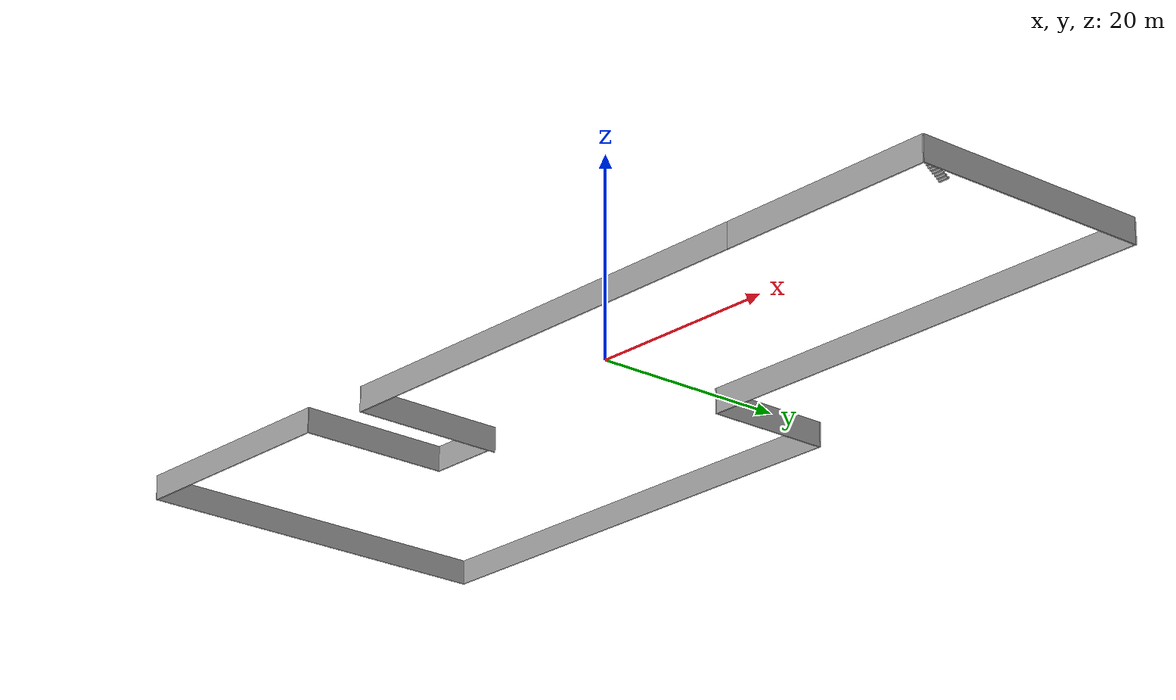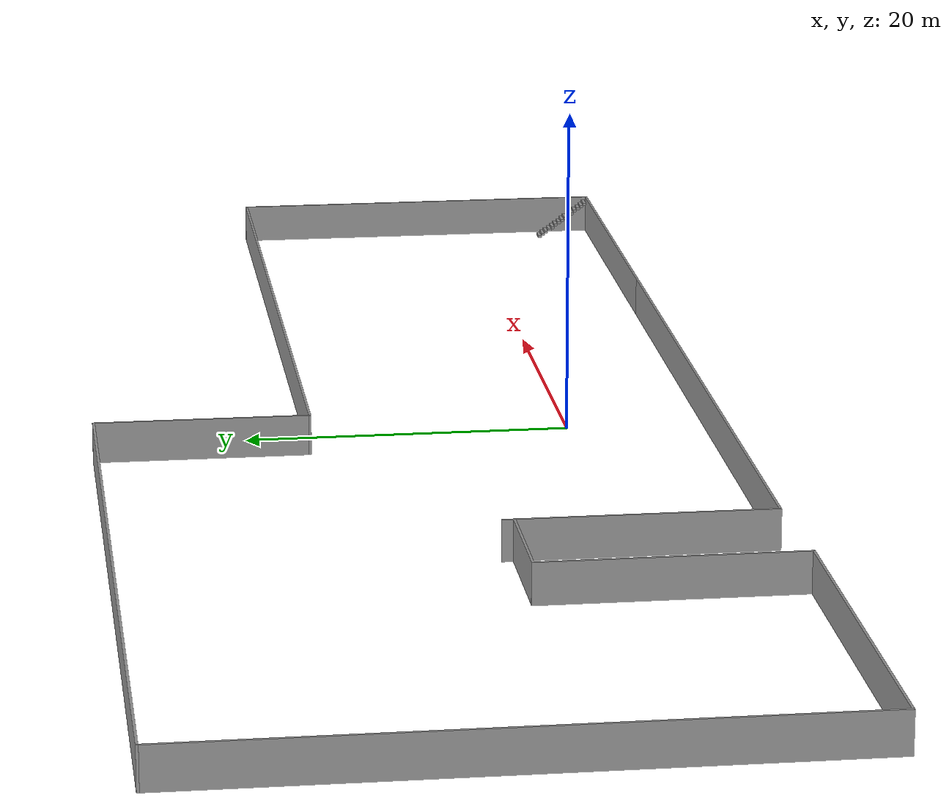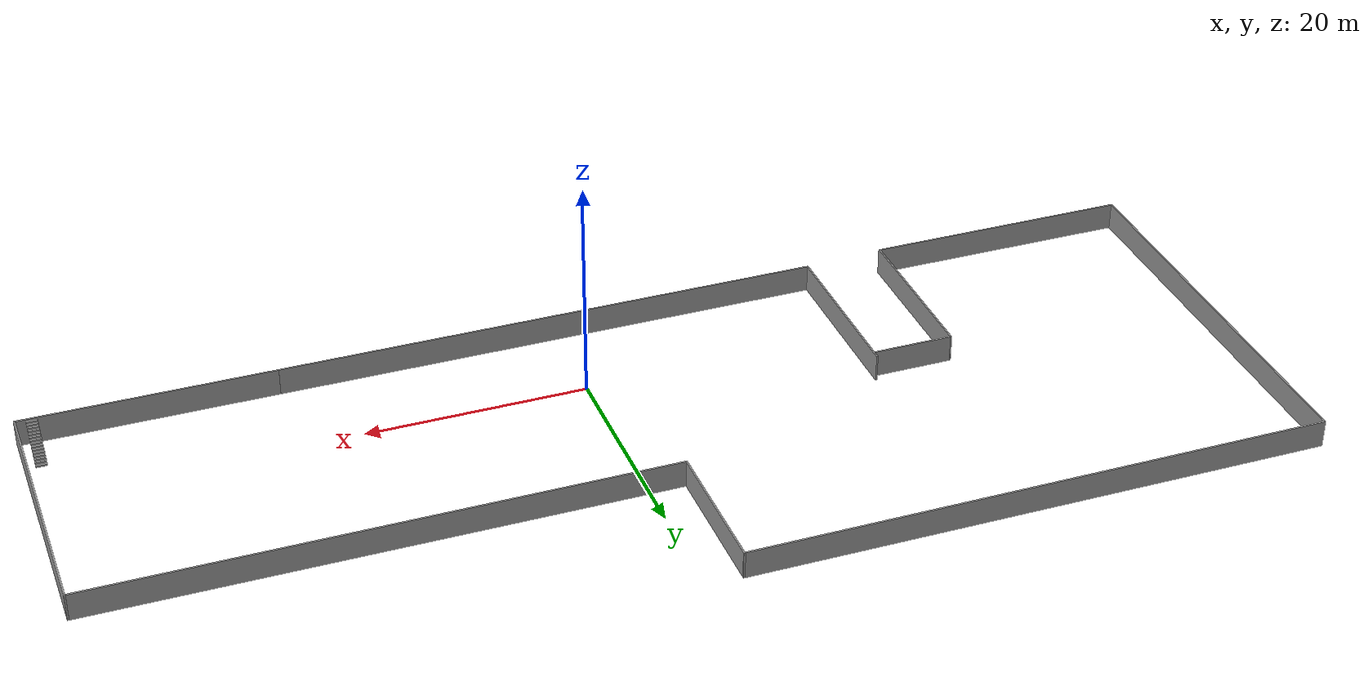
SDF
<?xml version='1.0'?>
<sdf version='1.7'>
  <model name='world.sdf'>
    <pose>-3.86099 10.236 0 0 -0 0</pose>
    <link name='Stairs_1'>
      <visual name='Stairs_1_Visual_0'>
        <pose>50.5695 -15.1205 0.083333 0 -0 0</pose>
        <geometry>
          <box>
            <size>1 0.233333 0.166667</size>
          </box>
        </geometry>
        <material>
          <script>
            <uri>file://media/materials/scripts/gazebo.material</uri>
            <name>Gazebo/Grey</name>
          </script>
          <ambient>1 1 1 1</ambient>
        </material>
        <meta>
          <layer>0</layer>
        </meta>
      </visual>
      <collision name='Stairs_1_Collision_0'>
        <geometry>
          <box>
            <size>1 0.233333 0.166667</size>
          </box>
        </geometry>
        <pose>50.5695 -15.1205 0.083333 0 -0 0</pose>
      </collision>
      <visual name='Stairs_1_Visual_1'>
        <pose>50.5695 -15.3538 0.25 0 -0 0</pose>
        <geometry>
          <box>
            <size>1 0.233333 0.166667</size>
          </box>
        </geometry>
        <material>
          <script>
            <uri>file://media/materials/scripts/gazebo.material</uri>
            <name>Gazebo/Grey</name>
          </script>
          <ambient>1 1 1 1</ambient>
        </material>
        <meta>
          <layer>0</layer>
        </meta>
      </visual>
      <collision name='Stairs_1_Collision_1'>
        <geometry>
          <box>
            <size>1 0.233333 0.166667</size>
          </box>
        </geometry>
        <pose>50.5695 -15.3538 0.25 0 -0 0</pose>
      </collision>
      <visual name='Stairs_1_Visual_2'>
        <pose>50.5695 -15.5871 0.416667 0 -0 0</pose>
        <geometry>
          <box>
            <size>1 0.233333 0.166667</size>
          </box>
        </geometry>
        <material>
          <script>
            <uri>file://media/materials/scripts/gazebo.material</uri>
            <name>Gazebo/Grey</name>
          </script>
          <ambient>1 1 1 1</ambient>
        </material>
        <meta>
          <layer>0</layer>
        </meta>
      </visual>
      <collision name='Stairs_1_Collision_2'>
        <geometry>
          <box>
            <size>1 0.233333 0.166667</size>
          </box>
        </geometry>
        <pose>50.5695 -15.5871 0.416667 0 -0 0</pose>
      </collision>
      <visual name='Stairs_1_Visual_3'>
        <pose>50.5695 -15.8205 0.583333 0 -0 0</pose>
        <geometry>
          <box>
            <size>1 0.233333 0.166667</size>
          </box>
        </geometry>
        <material>
          <script>
            <uri>file://media/materials/scripts/gazebo.material</uri>
            <name>Gazebo/Grey</name>
          </script>
          <ambient>1 1 1 1</ambient>
        </material>
        <meta>
          <layer>0</layer>
        </meta>
      </visual>
      <collision name='Stairs_1_Collision_3'>
        <geometry>
          <box>
            <size>1 0.233333 0.166667</size>
          </box>
        </geometry>
        <pose>50.5695 -15.8205 0.583333 0 -0 0</pose>
      </collision>
      <visual name='Stairs_1_Visual_4'>
        <pose>50.5695 -16.0538 0.75 0 -0 0</pose>
        <geometry>
          <box>
            <size>1 0.233333 0.166667</size>
          </box>
        </geometry>
        <material>
          <script>
            <uri>file://media/materials/scripts/gazebo.material</uri>
            <name>Gazebo/Grey</name>
          </script>
          <ambient>1 1 1 1</ambient>
        </material>
        <meta>
          <layer>0</layer>
        </meta>
      </visual>
      <collision name='Stairs_1_Collision_4'>
        <geometry>
          <box>
            <size>1 0.233333 0.166667</size>
          </box>
        </geometry>
        <pose>50.5695 -16.0538 0.75 0 -0 0</pose>
      </collision>
      <visual name='Stairs_1_Visual_5'>
        <pose>50.5695 -16.2871 0.916667 0 -0 0</pose>
        <geometry>
          <box>
            <size>1 0.233333 0.166667</size>
          </box>
        </geometry>
        <material>
          <script>
            <uri>file://media/materials/scripts/gazebo.material</uri>
            <name>Gazebo/Grey</name>
          </script>
          <ambient>1 1 1 1</ambient>
        </material>
        <meta>
          <layer>0</layer>
        </meta>
      </visual>
      <collision name='Stairs_1_Collision_5'>
        <geometry>
          <box>
            <size>1 0.233333 0.166667</size>
          </box>
        </geometry>
        <pose>50.5695 -16.2871 0.916667 0 -0 0</pose>
      </collision>
      <visual name='Stairs_1_Visual_6'>
        <pose>50.5695 -16.5205 1.08333 0 -0 0</pose>
        <geometry>
          <box>
            <size>1 0.233333 0.166667</size>
          </box>
        </geometry>
        <material>
          <script>
            <uri>file://media/materials/scripts/gazebo.material</uri>
            <name>Gazebo/Grey</name>
          </script>
          <ambient>1 1 1 1</ambient>
        </material>
        <meta>
          <layer>0</layer>
        </meta>
      </visual>
      <collision name='Stairs_1_Collision_6'>
        <geometry>
          <box>
            <size>1 0.233333 0.166667</size>
          </box>
        </geometry>
        <pose>50.5695 -16.5205 1.08333 0 -0 0</pose>
      </collision>
      <visual name='Stairs_1_Visual_7'>
        <pose>50.5695 -16.7538 1.25 0 -0 0</pose>
        <geometry>
          <box>
            <size>1 0.233333 0.166667</size>
          </box>
        </geometry>
        <material>
          <script>
            <uri>file://media/materials/scripts/gazebo.material</uri>
            <name>Gazebo/Grey</name>
          </script>
          <ambient>1 1 1 1</ambient>
        </material>
        <meta>
          <layer>0</layer>
        </meta>
      </visual>
      <collision name='Stairs_1_Collision_7'>
        <geometry>
          <box>
            <size>1 0.233333 0.166667</size>
          </box>
        </geometry>
        <pose>50.5695 -16.7538 1.25 0 -0 0</pose>
      </collision>
      <visual name='Stairs_1_Visual_8'>
        <pose>50.5695 -16.9871 1.41667 0 -0 0</pose>
        <geometry>
          <box>
            <size>1 0.233333 0.166667</size>
          </box>
        </geometry>
        <material>
          <script>
            <uri>file://media/materials/scripts/gazebo.material</uri>
            <name>Gazebo/Grey</name>
          </script>
          <ambient>1 1 1 1</ambient>
        </material>
        <meta>
          <layer>0</layer>
        </meta>
      </visual>
      <collision name='Stairs_1_Collision_8'>
        <geometry>
          <box>
            <size>1 0.233333 0.166667</size>
          </box>
        </geometry>
        <pose>50.5695 -16.9871 1.41667 0 -0 0</pose>
      </collision>
      <visual name='Stairs_1_Visual_9'>
        <pose>50.5695 -17.2205 1.58333 0 -0 0</pose>
        <geometry>
          <box>
            <size>1 0.233333 0.166667</size>
          </box>
        </geometry>
        <material>
          <script>
            <uri>file://media/materials/scripts/gazebo.material</uri>
            <name>Gazebo/Grey</name>
          </script>
          <ambient>1 1 1 1</ambient>
        </material>
        <meta>
          <layer>0</layer>
        </meta>
      </visual>
      <collision name='Stairs_1_Collision_9'>
        <geometry>
          <box>
            <size>1 0.233333 0.166667</size>
          </box>
        </geometry>
        <pose>50.5695 -17.2205 1.58333 0 -0 0</pose>
      </collision>
      <visual name='Stairs_1_Visual_10'>
        <pose>50.5695 -17.4538 1.75 0 -0 0</pose>
        <geometry>
          <box>
            <size>1 0.233333 0.166667</size>
          </box>
        </geometry>
        <material>
          <script>
            <uri>file://media/materials/scripts/gazebo.material</uri>
            <name>Gazebo/Grey</name>
          </script>
          <ambient>1 1 1 1</ambient>
        </material>
        <meta>
          <layer>0</layer>
        </meta>
      </visual>
      <collision name='Stairs_1_Collision_10'>
        <geometry>
          <box>
            <size>1 0.233333 0.166667</size>
          </box>
        </geometry>
        <pose>50.5695 -17.4538 1.75 0 -0 0</pose>
      </collision>
      <visual name='Stairs_1_Visual_11'>
        <pose>50.5695 -17.6871 1.91667 0 -0 0</pose>
        <geometry>
          <box>
            <size>1 0.233333 0.166667</size>
          </box>
        </geometry>
        <material>
          <script>
            <uri>file://media/materials/scripts/gazebo.material</uri>
            <name>Gazebo/Grey</name>
          </script>
          <ambient>1 1 1 1</ambient>
        </material>
        <meta>
          <layer>0</layer>
        </meta>
      </visual>
      <collision name='Stairs_1_Collision_11'>
        <geometry>
          <box>
            <size>1 0.233333 0.166667</size>
          </box>
        </geometry>
        <pose>50.5695 -17.6871 1.91667 0 -0 0</pose>
      </collision>
      <visual name='Stairs_1_Visual_12'>
        <pose>50.5695 -17.9205 2.08333 0 -0 0</pose>
        <geometry>
          <box>
            <size>1 0.233333 0.166667</size>
          </box>
        </geometry>
        <material>
          <script>
            <uri>file://media/materials/scripts/gazebo.material</uri>
            <name>Gazebo/Grey</name>
          </script>
          <ambient>1 1 1 1</ambient>
        </material>
        <meta>
          <layer>0</layer>
        </meta>
      </visual>
      <collision name='Stairs_1_Collision_12'>
        <geometry>
          <box>
            <size>1 0.233333 0.166667</size>
          </box>
        </geometry>
        <pose>50.5695 -17.9205 2.08333 0 -0 0</pose>
      </collision>
      <visual name='Stairs_1_Visual_13'>
        <pose>50.5695 -18.1538 2.25 0 -0 0</pose>
        <geometry>
          <box>
            <size>1 0.233333 0.166667</size>
          </box>
        </geometry>
        <material>
          <script>
            <uri>file://media/materials/scripts/gazebo.material</uri>
            <name>Gazebo/Grey</name>
          </script>
          <ambient>1 1 1 1</ambient>
        </material>
        <meta>
          <layer>0</layer>
        </meta>
      </visual>
      <collision name='Stairs_1_Collision_13'>
        <geometry>
          <box>
            <size>1 0.233333 0.166667</size>
          </box>
        </geometry>
        <pose>50.5695 -18.1538 2.25 0 -0 0</pose>
      </collision>
      <visual name='Stairs_1_Visual_14'>
        <pose>50.5695 -18.3871 2.41667 0 -0 0</pose>
        <geometry>
          <box>
            <size>1 0.233333 0.166667</size>
          </box>
        </geometry>
        <material>
          <script>
            <uri>file://media/materials/scripts/gazebo.material</uri>
            <name>Gazebo/Grey</name>
          </script>
          <ambient>1 1 1 1</ambient>
        </material>
        <meta>
          <layer>0</layer>
        </meta>
      </visual>
      <collision name='Stairs_1_Collision_14'>
        <geometry>
          <box>
            <size>1 0.233333 0.166667</size>
          </box>
        </geometry>
        <pose>50.5695 -18.3871 2.41667 0 -0 0</pose>
      </collision>
    </link>
    <link name='Wall_10'>
      <collision name='Wall_10_Collision'>
        <geometry>
          <box>
            <size>16 0.15 2.5</size>
          </box>
        </geometry>
        <pose>0 0 1.25 0 -0 0</pose>
      </collision>
      <visual name='Wall_10_Visual'>
        <pose>0 0 1.25 0 -0 0</pose>
        <geometry>
          <box>
            <size>16 0.15 2.5</size>
          </box>
        </geometry>
        <material>
          <script>
            <uri>file://media/materials/scripts/gazebo.material</uri>
            <name>Gazebo/Grey</name>
          </script>
          <ambient>1 1 1 1</ambient>
        </material>
        <meta>
          <layer>0</layer>
        </meta>
      </visual>
      <pose>-20.475 -10.85 0 0 -0 -1.5708</pose>
    </link>
    <link name='Wall_11'>
      <collision name='Wall_11_Collision'>
        <geometry>
          <box>
            <size>49.75 0.15 2.5</size>
          </box>
        </geometry>
        <pose>0 0 1.25 0 -0 0</pose>
      </collision>
      <visual name='Wall_11_Visual'>
        <pose>0 0 1.25 0 -0 0</pose>
        <geometry>
          <box>
            <size>49.75 0.15 2.5</size>
          </box>
        </geometry>
        <material>
          <script>
            <uri>file://media/materials/scripts/gazebo.material</uri>
            <name>Gazebo/Grey</name>
          </script>
          <ambient>1 1 1 1</ambient>
        </material>
        <meta>
          <layer>0</layer>
        </meta>
      </visual>
      <pose>4.325 -18.775 0 0 -0 0</pose>
    </link>
    <link name='Wall_12'>
      <collision name='Wall_12_Collision'>
        <geometry>
          <box>
            <size>23 0.15 2.5</size>
          </box>
        </geometry>
        <pose>0 0 1.25 0 -0 0</pose>
      </collision>
      <visual name='Wall_12_Visual'>
        <pose>0 0 1.25 0 -0 0</pose>
        <geometry>
          <box>
            <size>23 0.15 2.5</size>
          </box>
        </geometry>
        <material>
          <script>
            <uri>file://media/materials/scripts/gazebo.material</uri>
            <name>Gazebo/Grey</name>
          </script>
          <ambient>1 1 1 1</ambient>
        </material>
        <meta>
          <layer>0</layer>
        </meta>
      </visual>
      <pose>40.55 -18.775 0 0 -0 0</pose>
    </link>
    <link name='Wall_13'>
      <collision name='Wall_13_Collision'>
        <geometry>
          <box>
            <size>25 0.15 2.5</size>
          </box>
        </geometry>
        <pose>0 0 1.25 0 -0 0</pose>
      </collision>
      <visual name='Wall_13_Visual'>
        <pose>0 0 1.25 0 -0 0</pose>
        <geometry>
          <box>
            <size>25 0.15 2.5</size>
          </box>
        </geometry>
        <material>
          <script>
            <uri>file://media/materials/scripts/gazebo.material</uri>
            <name>Gazebo/Grey</name>
          </script>
          <ambient>1 1 1 1</ambient>
        </material>
        <meta>
          <layer>0</layer>
        </meta>
      </visual>
      <pose>51.975 -6.35 0 0 -0 1.5708</pose>
    </link>
    <link name='Wall_14'>
      <collision name='Wall_14_Collision'>
        <geometry>
          <box>
            <size>51.5 0.15 2.5</size>
          </box>
        </geometry>
        <pose>0 0 1.25 0 -0 0</pose>
      </collision>
      <visual name='Wall_14_Visual'>
        <pose>0 0 1.25 0 -0 0</pose>
        <geometry>
          <box>
            <size>51.5 0.15 2.5</size>
          </box>
        </geometry>
        <material>
          <script>
            <uri>file://media/materials/scripts/gazebo.material</uri>
            <name>Gazebo/Grey</name>
          </script>
          <ambient>1 1 1 1</ambient>
        </material>
        <meta>
          <layer>0</layer>
        </meta>
      </visual>
      <pose>26.3 6.075 0 0 -0 3.14159</pose>
    </link>
    <link name='Wall_15'>
      <collision name='Wall_15_Collision'>
        <geometry>
          <box>
            <size>13.25 0.15 2.5</size>
          </box>
        </geometry>
        <pose>0 0 1.25 0 -0 0</pose>
      </collision>
      <visual name='Wall_15_Visual'>
        <pose>0 0 1.25 0 -0 0</pose>
        <geometry>
          <box>
            <size>13.25 0.15 2.5</size>
          </box>
        </geometry>
        <material>
          <script>
            <uri>file://media/materials/scripts/gazebo.material</uri>
            <name>Gazebo/Grey</name>
          </script>
          <ambient>1 1 1 1</ambient>
        </material>
        <meta>
          <layer>0</layer>
        </meta>
      </visual>
      <pose>0.625 12.625 0 0 -0 1.5708</pose>
    </link>
    <link name='Wall_16'>
      <collision name='Wall_16_Collision'>
        <geometry>
          <box>
            <size>52.75 0.15 2.5</size>
          </box>
        </geometry>
        <pose>0 0 1.25 0 -0 0</pose>
      </collision>
      <visual name='Wall_16_Visual'>
        <pose>0 0 1.25 0 -0 0</pose>
        <geometry>
          <box>
            <size>52.75 0.15 2.5</size>
          </box>
        </geometry>
        <material>
          <script>
            <uri>file://media/materials/scripts/gazebo.material</uri>
            <name>Gazebo/Grey</name>
          </script>
          <ambient>1 1 1 1</ambient>
        </material>
        <meta>
          <layer>0</layer>
        </meta>
      </visual>
      <pose>-25.675 19.175 0 0 -0 3.14159</pose>
    </link>
    <link name='Wall_17'>
      <collision name='Wall_17_Collision'>
        <geometry>
          <box>
            <size>38.5 0.15 2.5</size>
          </box>
        </geometry>
        <pose>0 0 1.25 0 -0 0</pose>
      </collision>
      <visual name='Wall_17_Visual'>
        <pose>0 0 1.25 0 -0 0</pose>
        <geometry>
          <box>
            <size>38.5 0.15 2.5</size>
          </box>
        </geometry>
        <material>
          <script>
            <uri>file://media/materials/scripts/gazebo.material</uri>
            <name>Gazebo/Grey</name>
          </script>
          <ambient>1 1 1 1</ambient>
        </material>
        <meta>
          <layer>0</layer>
        </meta>
      </visual>
      <pose>-51.975 0 0 0 -0 -1.5708</pose>
    </link>
    <link name='Wall_18'>
      <collision name='Wall_18_Collision'>
        <geometry>
          <box>
            <size>24.25 0.15 2.5</size>
          </box>
        </geometry>
        <pose>0 0 1.25 0 -0 0</pose>
      </collision>
      <visual name='Wall_18_Visual'>
        <pose>0 0 1.25 0 -0 0</pose>
        <geometry>
          <box>
            <size>24.25 0.15 2.5</size>
          </box>
        </geometry>
        <material>
          <script>
            <uri>file://media/materials/scripts/gazebo.material</uri>
            <name>Gazebo/Grey</name>
          </script>
          <ambient>1 1 1 1</ambient>
        </material>
        <meta>
          <layer>0</layer>
        </meta>
      </visual>
      <pose>-39.925 -19.175 0 0 -0 0</pose>
    </link>
    <link name='Wall_19'>
      <collision name='Wall_19_Collision'>
        <geometry>
          <box>
            <size>15.75 0.15 2.5</size>
          </box>
        </geometry>
        <pose>0 0 1.25 0 -0 0</pose>
      </collision>
      <visual name='Wall_19_Visual'>
        <pose>0 0 1.25 0 -0 0</pose>
        <geometry>
          <box>
            <size>15.75 0.15 2.5</size>
          </box>
        </geometry>
        <material>
          <script>
            <uri>file://media/materials/scripts/gazebo.material</uri>
            <name>Gazebo/Grey</name>
          </script>
          <ambient>1 1 1 1</ambient>
        </material>
        <meta>
          <layer>0</layer>
        </meta>
      </visual>
      <pose>-27.875 -11.375 0 0 -0 1.5708</pose>
    </link>
    <link name='Wall_20'>
      <collision name='Wall_20_Collision'>
        <geometry>
          <box>
            <size>7.5 0.15 2.5</size>
          </box>
        </geometry>
        <pose>0 0 1.25 0 -0 0</pose>
      </collision>
      <visual name='Wall_20_Visual'>
        <pose>0 0 1.25 0 -0 0</pose>
        <geometry>
          <box>
            <size>7.5 0.15 2.5</size>
          </box>
        </geometry>
        <material>
          <script>
            <uri>file://media/materials/scripts/gazebo.material</uri>
            <name>Gazebo/Grey</name>
          </script>
          <ambient>1 1 1 1</ambient>
        </material>
        <meta>
          <layer>0</layer>
        </meta>
      </visual>
      <pose>-24.2 -3.575 0 0 -0 0</pose>
    </link>
    <static>1</static>
  </model>
</sdf>
